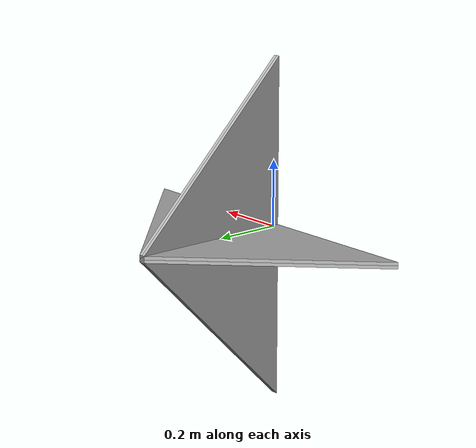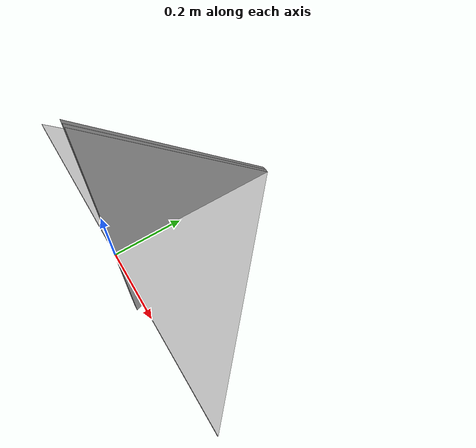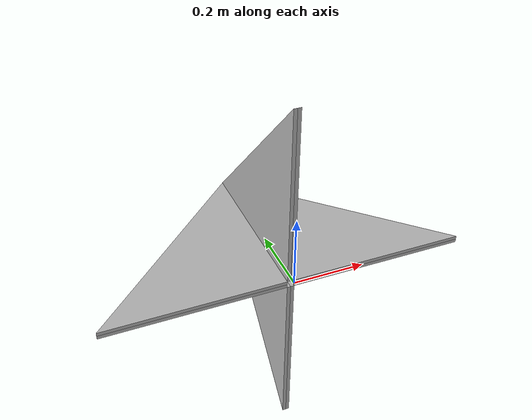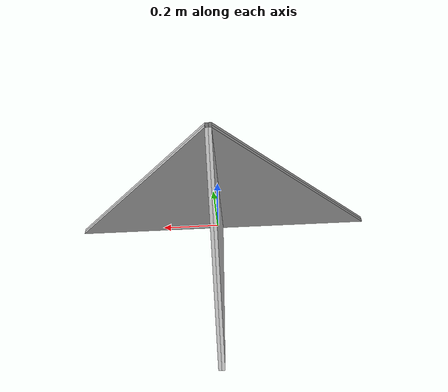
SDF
<?xml version='1.0' encoding='utf-8'?>
<sdf version="1.7">
    <model name="origami_robot">
        <link name="face6">
            <pose>0.16142394696992488 -1.5855049254706463e-06 0.00999990748957913 -9.24890348164022e-06 -1.5707963267521254 0</pose>
            <inertial>
                <mass>1.325</mass>
                <pose>0.16666666666666677 0.16666666666666624 0.17642857142856846 0.0 0.0 0.0</pose>
                <inertia>
                    <ixx>0.018413819444445076</ixx>
                    <iyy>0.01841381944444462</iyy>
                    <izz>0.03680555555555318</izz>
                    <ixy>0.009201388888889096</ixy>
                    <iyz>-7.05815252628962e-17</iyz>
                    <ixz>-1.873828448197008e-17</ixz>
                </inertia>
            </inertial>
            <visual name="face6_visual">
                <geometry>
                    <mesh>
                        <uri>model://origami_robot/meshes/face6.stl</uri>
                        <scale>0.001 0.001 0.001</scale>
                    </mesh>
                </geometry>
            </visual>
            <collision name="face6_collision">
                <geometry>
                    <mesh>
                        <uri>model://origami_robot/meshes/face6.stl</uri>
                        <scale>0.001 0.001 0.001</scale>
                    </mesh>
                </geometry>
            </collision>
        </link>
        <link name="face7">
            <pose>0.08571428571061877 -3.8184753481992215e-18 0.01000079276315546 3.141592653394602 -1.5707870778914177 3.141592653583172</pose>
            <inertial>
                <mass>1.325</mass>
                <pose>0.16666666666666688 0.1666666666666662 0.09071428571428412 0.0 0.0 0.0</pose>
                <inertia>
                    <ixx>0.01841381944444465</ixx>
                    <iyy>0.018413819444444215</iyy>
                    <izz>0.03680555555555322</izz>
                    <ixy>0.00920138888888904</ixy>
                    <iyz>-6.914936106389733e-17</iyz>
                    <ixz>-2.3396161733907047e-17</ixz>
                </inertia>
            </inertial>
            <visual name="face7_visual">
                <geometry>
                    <mesh>
                        <uri>model://origami_robot/meshes/face7.stl</uri>
                        <scale>0.001 0.001 0.001</scale>
                    </mesh>
                </geometry>
            </visual>
            <collision name="face7_collision">
                <geometry>
                    <mesh>
                        <uri>model://origami_robot/meshes/face7.stl</uri>
                        <scale>0.001 0.001 0.001</scale>
                    </mesh>
                </geometry>
            </collision>
        </link>
        <link name="face5">
            <pose>-0.020004624450884453 9.249942190505888e-08 0.267142764632436 3.14159265354702 -3.083563447699235e-15 3.1415834046863114</pose>
            <inertial>
                <mass>1.325</mass>
                <pose>0.166666666666663 0.16666666666666508 0.26214285714285507 0.0 0.0 0.0</pose>
                <inertia>
                    <ixx>0.01841381944444206</ixx>
                    <iyy>0.018413819444444736</iyy>
                    <izz>0.03680555555555569</izz>
                    <ixy>0.009201388888888473</ixy>
                    <iyz>-1.7211224124533915e-16</iyz>
                    <ixz>-9.023204587541582e-17</ixz>
                </inertia>
            </inertial>
            <visual name="face5_visual">
                <geometry>
                    <mesh>
                        <uri>model://origami_robot/meshes/face5.stl</uri>
                        <scale>0.001 0.001 0.001</scale>
                    </mesh>
                </geometry>
            </visual>
            <collision name="face5_collision">
                <geometry>
                    <mesh>
                        <uri>model://origami_robot/meshes/face5.stl</uri>
                        <scale>0.001 0.001 0.001</scale>
                    </mesh>
                </geometry>
            </collision>
        </link>
        <link name="face3">
            <pose>-0.5342903386926017 4.849089353698152e-06 -0.010004849089347019 4.62468180539605e-06 1.5707870778914277 -4.62442348850075e-06</pose>
            <inertial>
                <mass>1.325</mass>
                <pose>0.1666666666666662 0.16666666666666596 0.5192857142857059 0.0 0.0 0.0</pose>
                <inertia>
                    <ixx>0.018413819444450107</ixx>
                    <iyy>0.018413819444448535</iyy>
                    <izz>0.036805555555553274</izz>
                    <ixy>0.009201388888887956</ixy>
                    <iyz>2.674156071073527e-16</iyz>
                    <ixz>-5.4098962019727696e-17</ixz>
                </inertia>
            </inertial>
            <visual name="face3_visual">
                <geometry>
                    <mesh>
                        <uri>model://origami_robot/meshes/face3.stl</uri>
                        <scale>0.001 0.001 0.001</scale>
                    </mesh>
                </geometry>
            </visual>
            <collision name="face3_collision">
                <geometry>
                    <mesh>
                        <uri>model://origami_robot/meshes/face3.stl</uri>
                        <scale>0.001 0.001 0.001</scale>
                    </mesh>
                </geometry>
            </collision>
        </link>
        <link name="face2">
            <pose>-0.4385714285714252 -1.8561551357347203e-16 -0.0099999999999946 7.754586590738845e-17 1.570796326794884 0</pose>
            <inertial>
                <mass>1.325</mass>
                <pose>0.16666666666666613 0.16666666666666588 0.43357142857142167 0.0 0.0 0.0</pose>
                <inertia>
                    <ixx>0.018413819444448212</ixx>
                    <iyy>0.018413819444447067</iyy>
                    <izz>0.03680555555555336</izz>
                    <ixy>0.009201388888888147</ixy>
                    <iyz>2.345854890373126e-16</iyz>
                    <ixz>-7.991476082521071e-18</ixz>
                </inertia>
            </inertial>
            <visual name="face2_visual">
                <geometry>
                    <mesh>
                        <uri>model://origami_robot/meshes/face2.stl</uri>
                        <scale>0.001 0.001 0.001</scale>
                    </mesh>
                </geometry>
            </visual>
            <collision name="face2_collision">
                <geometry>
                    <mesh>
                        <uri>model://origami_robot/meshes/face2.stl</uri>
                        <scale>0.001 0.001 0.001</scale>
                    </mesh>
                </geometry>
            </collision>
        </link>
        <link name="face1">
            <pose>8.881784197001253e-17 -2.0188818539569435e-16 -0.3528571428571427 1.811248070572428e-15 -1.6097466464142804e-16 -1.1102230259625723e-16</pose>
            <inertial>
                <mass>1.325</mass>
                <pose>0.16666666666666394 0.16666666666666674 0.3478571428571429 0.0 0.0 0.0</pose>
                <inertia>
                    <ixx>0.01841381944444053</ixx>
                    <iyy>0.018413819444443938</iyy>
                    <izz>0.03680555555555583</izz>
                    <ixy>0.009201388888888778</ixy>
                    <iyz>5.881963293985867e-16</iyz>
                    <ixz>4.2405356915733085e-17</ixz>
                </inertia>
            </inertial>
            <visual name="face1_visual">
                <geometry>
                    <mesh>
                        <uri>model://origami_robot/meshes/face1.stl</uri>
                        <scale>0.001 0.001 0.001</scale>
                    </mesh>
                </geometry>
            </visual>
            <collision name="face1_collision">
                <geometry>
                    <mesh>
                        <uri>model://origami_robot/meshes/face1.stl</uri>
                        <scale>0.001 0.001 0.001</scale>
                    </mesh>
                </geometry>
            </collision>
        </link>
        <link name="face4">
            <pose>-0.02000462445088332 9.248518428373044e-08 0.5999999074895797 3.14159265354702 -3.361510586142836e-15 3.1415834046863114</pose>
            <inertial>
                <mass>1.325</mass>
                <pose>0.16666666666666385 0.16666666666666483 0.6049999999999991 0.0 0.0 0.0</pose>
                <inertia>
                    <ixx>0.018413819444436128</ixx>
                    <iyy>0.01841381944444357</iyy>
                    <izz>0.036805555555556646</izz>
                    <ixy>0.009201388888888358</ixy>
                    <iyz>-1.1393411228537334e-15</iyz>
                    <ixz>-1.975422898803464e-17</ixz>
                </inertia>
            </inertial>
            <visual name="face4_visual">
                <geometry>
                    <mesh>
                        <uri>model://origami_robot/meshes/face4.stl</uri>
                        <scale>0.001 0.001 0.001</scale>
                    </mesh>
                </geometry>
            </visual>
            <collision name="face4_collision">
                <geometry>
                    <mesh>
                        <uri>model://origami_robot/meshes/face4.stl</uri>
                        <scale>0.001 0.001 0.001</scale>
                    </mesh>
                </geometry>
            </collision>
        </link>
        <link name="face0">
            <pose>0.0 0.0 0.0 0.0 -0.0 0.0</pose>
            <inertial>
                <mass>1.325</mass>
                <pose>0.16666666666666666 0.16666666666666669 0.005 0.0 0.0 0.0</pose>
                <inertia>
                    <ixx>0.018413819444444403</ixx>
                    <iyy>0.018413819444444417</iyy>
                    <izz>0.036805555555555494</izz>
                    <ixy>0.00920138888888887</ixy>
                    <iyz>0.0</iyz>
                    <ixz>-2.168404344971009e-19</ixz>
                </inertia>
            </inertial>
            <visual name="face0_visual">
                <geometry>
                    <mesh>
                        <uri>model://origami_robot/meshes/face0.stl</uri>
                        <scale>0.001 0.001 0.001</scale>
                    </mesh>
                </geometry>
            </visual>
            <collision name="face0_collision">
                <geometry>
                    <mesh>
                        <uri>model://origami_robot/meshes/face0.stl</uri>
                        <scale>0.001 0.001 0.001</scale>
                    </mesh>
                </geometry>
            </collision>
        </link>
        <joint name="joint1" type="revolute">
            <pose>-1.9093706420783104e-16 4.493880470425761e-16 0.4385714285714217 0.0 0.0 0.0</pose>
            <parent>face1</parent>
            <child>face2</child>
            <axis>
                <xyz expressed_in="__model__">0.0 1.0 0.0</xyz>
            </axis>
        </joint>
        <joint name="joint2" type="revolute">
            <pose>0.49999999999999994 -7.32150602941326e-16 0.5242857142857116 0.0 0.0 0.0</pose>
            <parent>face2</parent>
            <child>face3</child>
            <axis>
                <xyz expressed_in="__model__">-0.0 -0.707107 -0.707107</xyz>
            </axis>
        </joint>
        <joint name="joint3" type="revolute">
            <pose>3.7554825922645567e-07 -9.251474930282879e-08 0.6099999074895794 0.0 0.0 0.0</pose>
            <parent>face3</parent>
            <child>face4</child>
            <axis>
                <xyz expressed_in="__model__">9e-06 1.0 0.0</xyz>
            </axis>
        </joint>
        <joint name="joint4" type="revolute">
            <pose>0.500000375573113 2.830339368174522e-07 0.2671427646324364 0.0 0.0 0.0</pose>
            <parent>face4</parent>
            <child>face5</child>
            <axis>
                <xyz expressed_in="__model__">-0.707113 -0.7071 -0.0</xyz>
            </axis>
        </joint>
        <joint name="joint5" type="revolute">
            <pose>9.251042032555914e-08 -9.251389396352373e-08 0.18142894697682765 0.0 0.0 0.0</pose>
            <parent>face5</parent>
            <child>face6</child>
            <axis>
                <xyz expressed_in="__model__">9e-06 1.0 0.0</xyz>
            </axis>
        </joint>
        <joint name="joint6" type="revolute">
            <pose>0.5000000925138935 8.621829580677525e-16 0.09571466126211667 0.0 0.0 0.0</pose>
            <parent>face6</parent>
            <child>face7</child>
            <axis>
                <xyz expressed_in="__model__">-7e-06 -0.707107 0.707107</xyz>
            </axis>
        </joint>
        <joint name="joint0" type="revolute">
            <pose>0.4999999999999958 1.0890654615823128e-15 0.3528571428571425 0.0 0.0 0.0</pose>
            <parent>face0</parent>
            <child>face1</child>
            <axis>
                <xyz expressed_in="__model__">0.707107 -0.707107 0.0</xyz>
            </axis>
        </joint>
        <joint name="joint7" type="revolute">
            <pose>0.0 0.0 0.01 0.0 0.0 0.0</pose>
            <parent>face7</parent>
            <child>face0</child>
            <axis>
                <xyz expressed_in="__model__">0.0 1.0 0.0</xyz>
            </axis>
        </joint>
    </model>
</sdf>
